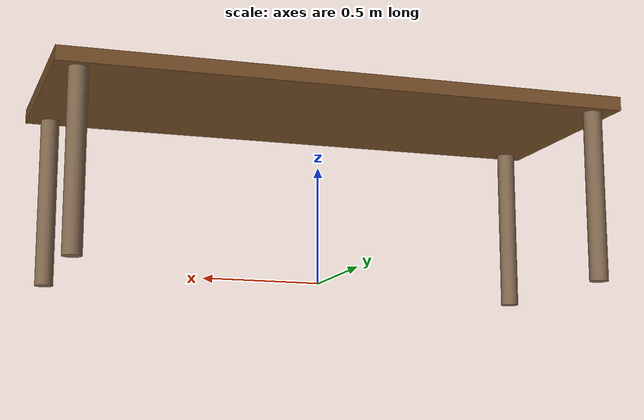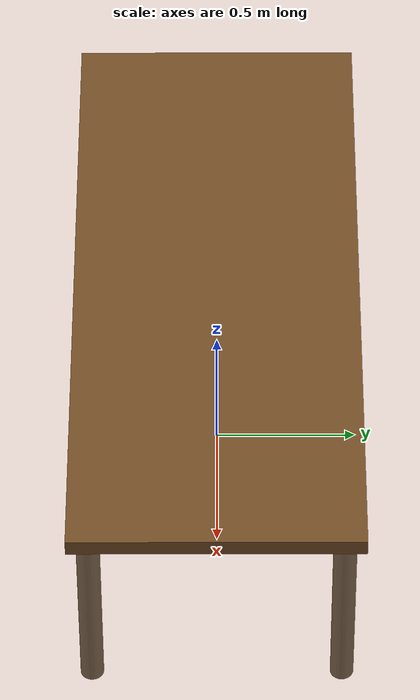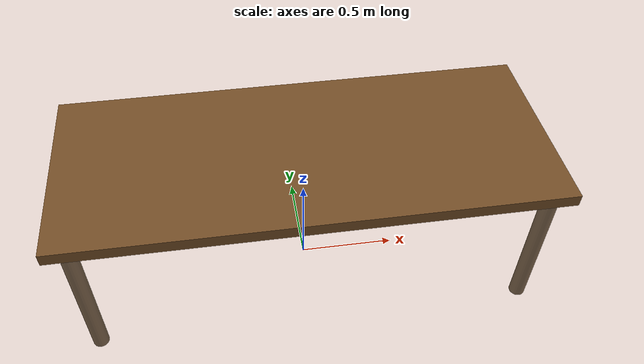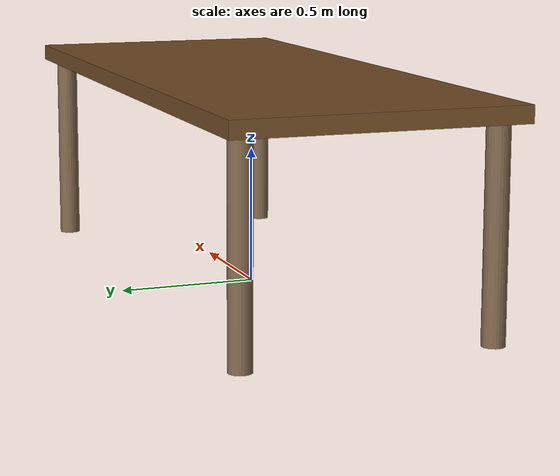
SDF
<?xml version="1.0"?>
<sdf version="1.6">
  <model name="conference_table">
    <static>true</static>
    <link name="top">
      <pose>0 0 0.76 0 0 0</pose>
      <collision name="c"><geometry><box><size>2.4 1.0 0.06</size></box></geometry></collision>
      <visual name="v">
        <geometry><box><size>2.4 1.0 0.06</size></box></geometry>
        <material><ambient>0.45 0.3 0.15 1</ambient><diffuse>0.45 0.3 0.15 1</diffuse>
          <specular>0.3 0.2 0.1 1</specular></material>
      </visual>
    </link>
    <link name="leg1"><pose>1.1 0.43 0.37 0 0 0</pose>
      <collision name="c"><geometry><cylinder><radius>0.04</radius><length>0.74</length></cylinder></geometry></collision>
      <visual name="v"><geometry><cylinder><radius>0.04</radius><length>0.74</length></cylinder></geometry>
        <material><ambient>0.5 0.4 0.3 1</ambient><diffuse>0.5 0.4 0.3 1</diffuse></material></visual>
    </link>
    <link name="leg2"><pose>1.1 -0.43 0.37 0 0 0</pose>
      <collision name="c"><geometry><cylinder><radius>0.04</radius><length>0.74</length></cylinder></geometry></collision>
      <visual name="v"><geometry><cylinder><radius>0.04</radius><length>0.74</length></cylinder></geometry>
        <material><ambient>0.5 0.4 0.3 1</ambient><diffuse>0.5 0.4 0.3 1</diffuse></material></visual>
    </link>
    <link name="leg3"><pose>-1.1 0.43 0.37 0 0 0</pose>
      <collision name="c"><geometry><cylinder><radius>0.04</radius><length>0.74</length></cylinder></geometry></collision>
      <visual name="v"><geometry><cylinder><radius>0.04</radius><length>0.74</length></cylinder></geometry>
        <material><ambient>0.5 0.4 0.3 1</ambient><diffuse>0.5 0.4 0.3 1</diffuse></material></visual>
    </link>
    <link name="leg4"><pose>-1.1 -0.43 0.37 0 0 0</pose>
      <collision name="c"><geometry><cylinder><radius>0.04</radius><length>0.74</length></cylinder></geometry></collision>
      <visual name="v"><geometry><cylinder><radius>0.04</radius><length>0.74</length></cylinder></geometry>
        <material><ambient>0.5 0.4 0.3 1</ambient><diffuse>0.5 0.4 0.3 1</diffuse></material></visual>
    </link>
  </model>
</sdf>
